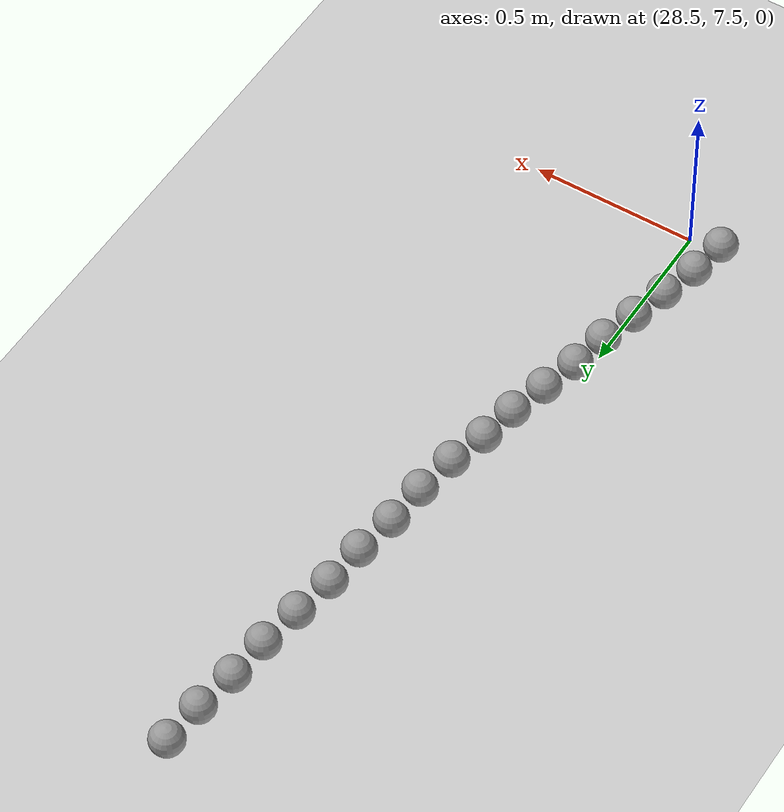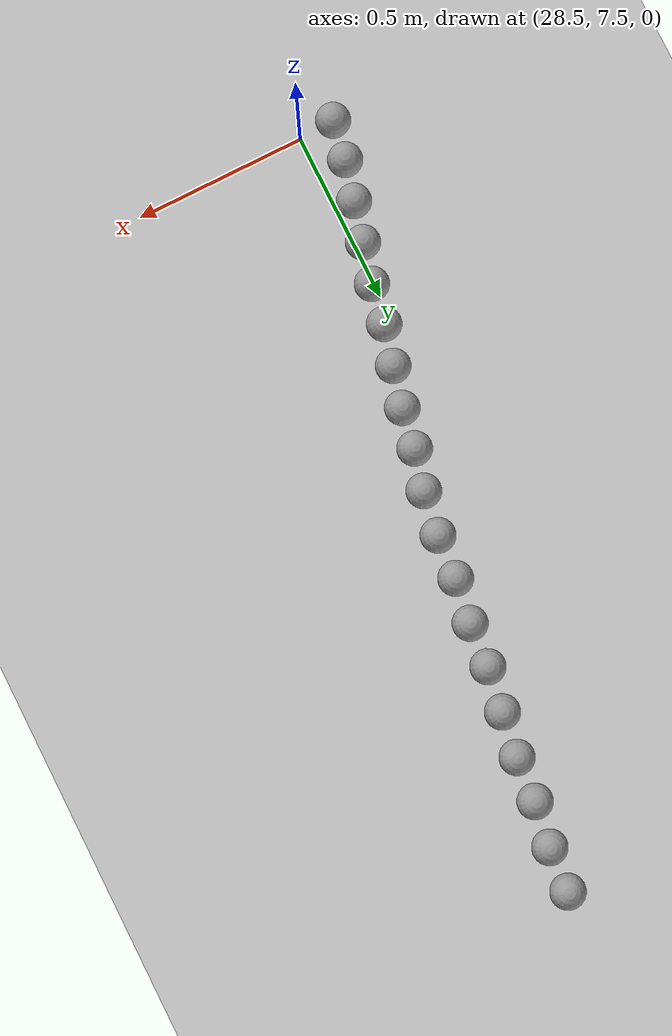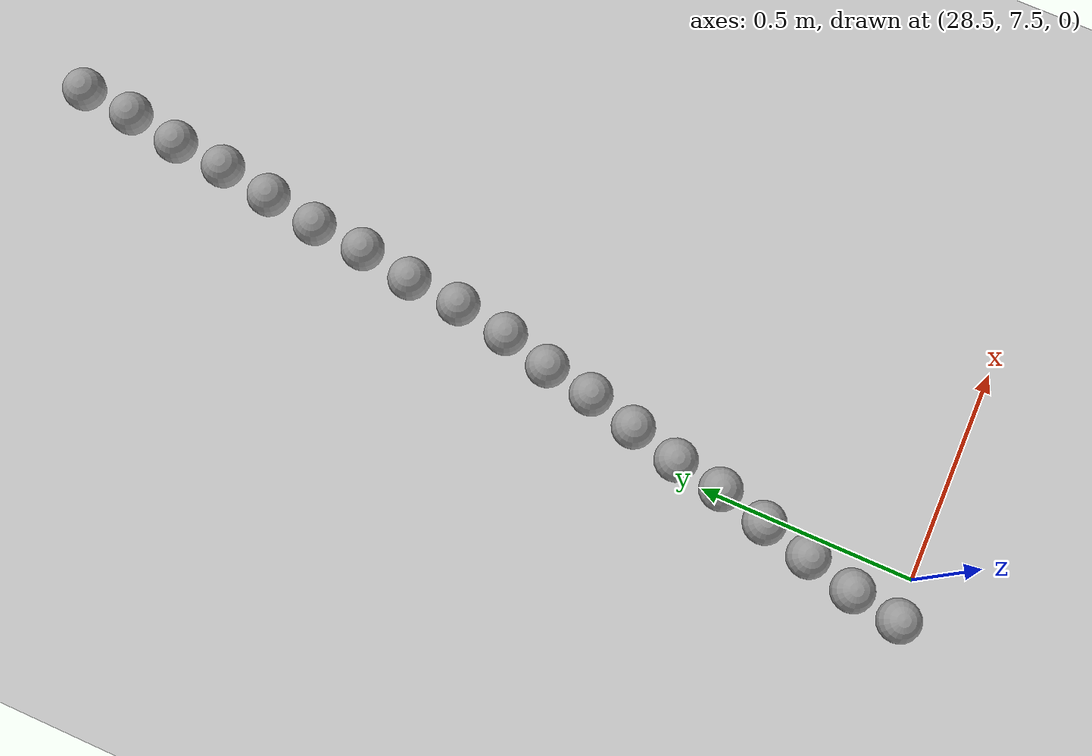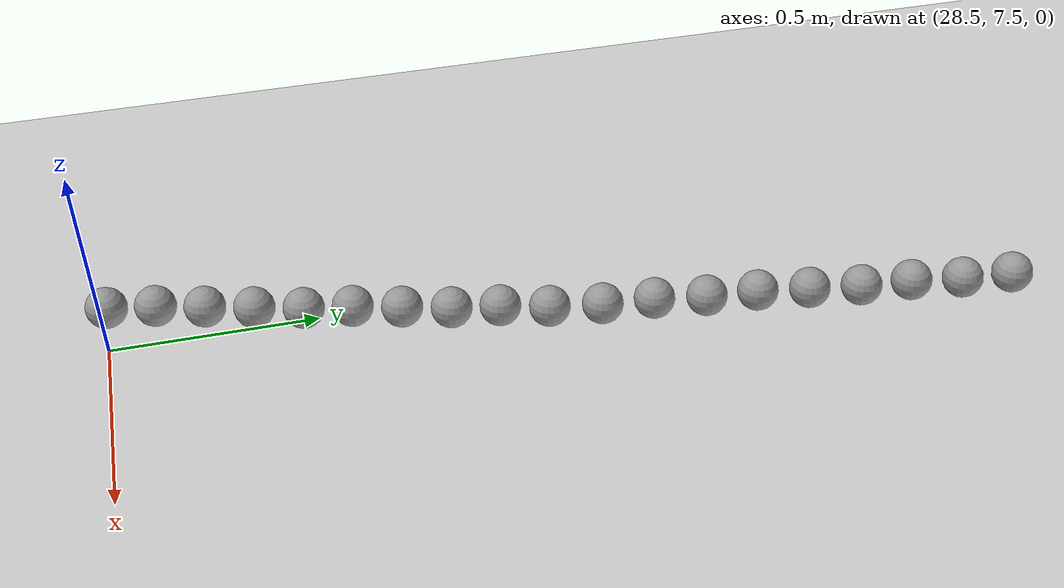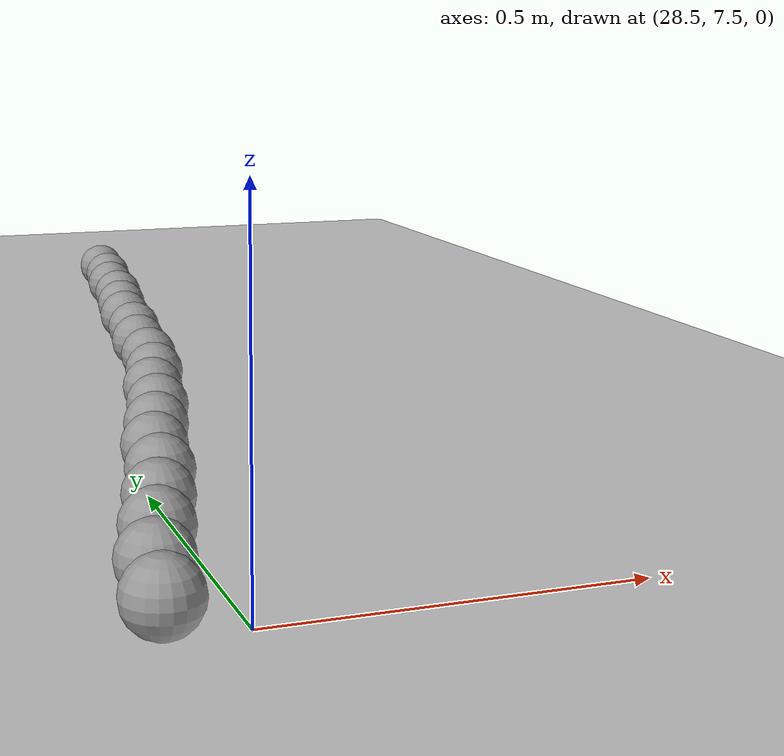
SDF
<sdf version="1.6">
 <world name="default">
  <model name="ground_plane">
   <static>1</static>
   <link name="link">
    <collision name="collision">
     <geometry><plane><normal>0 0 1</normal><size>100 100</size></plane></geometry>
     <surface><friction><ode><mu>100</mu><mu2>50</mu2></ode></friction></surface>
    </collision>
    <visual name="visual">
     <cast_shadows>0</cast_shadows>
     <geometry><plane><normal>0 0 1</normal><size>100 100</size></plane></geometry>
     <material>
      <script><uri>file://media/materials/scripts/gazebo.material</uri><name>Gazebo/Grey</name></script>
     </material>
    </visual>
   </link>
  </model>
  <model name="unit_sphere_0_261">
   <pose>28.780000 9.674000 0.050000 0 -0 0</pose>
   <link name="link">
    <inertial>
     <mass>1</mass>
     <inertia><ixx>0.1</ixx><ixy>0</ixy><ixz>0</ixz><iyy>0.1</iyy><iyz>0</iyz><izz>0.1</izz></inertia>
    </inertial>
    <collision name="collision"><geometry><sphere><radius>0.050000</radius></sphere></geometry></collision>
    <visual name="visual">
     <geometry><sphere><radius>0.050000</radius></sphere></geometry>
     <material>
      <script><name>Gazebo/Grey</name><uri>file://media/materials/scripts/gazebo.material</uri></script>
     </material>
    </visual>
   </link>
  </model>
  <model name="unit_sphere_0_262">
   <pose>28.770000 9.548000 0.050000 0 -0 0</pose>
   <link name="link">
    <inertial>
     <mass>1</mass>
     <inertia><ixx>0.1</ixx><ixy>0</ixy><ixz>0</ixz><iyy>0.1</iyy><iyz>0</iyz><izz>0.1</izz></inertia>
    </inertial>
    <collision name="collision"><geometry><sphere><radius>0.050000</radius></sphere></geometry></collision>
    <visual name="visual">
     <geometry><sphere><radius>0.050000</radius></sphere></geometry>
     <material>
      <script><name>Gazebo/Grey</name><uri>file://media/materials/scripts/gazebo.material</uri></script>
     </material>
    </visual>
   </link>
  </model>
  <model name="unit_sphere_0_263">
   <pose>28.750000 9.422000 0.050000 0 -0 0</pose>
   <link name="link">
    <inertial>
     <mass>1</mass>
     <inertia><ixx>0.1</ixx><ixy>0</ixy><ixz>0</ixz><iyy>0.1</iyy><iyz>0</iyz><izz>0.1</izz></inertia>
    </inertial>
    <collision name="collision"><geometry><sphere><radius>0.050000</radius></sphere></geometry></collision>
    <visual name="visual">
     <geometry><sphere><radius>0.050000</radius></sphere></geometry>
     <material>
      <script><name>Gazebo/Grey</name><uri>file://media/materials/scripts/gazebo.material</uri></script>
     </material>
    </visual>
   </link>
  </model>
  <model name="unit_sphere_0_264">
   <pose>28.740000 9.296000 0.050000 0 -0 0</pose>
   <link name="link">
    <inertial>
     <mass>1</mass>
     <inertia><ixx>0.1</ixx><ixy>0</ixy><ixz>0</ixz><iyy>0.1</iyy><iyz>0</iyz><izz>0.1</izz></inertia>
    </inertial>
    <collision name="collision"><geometry><sphere><radius>0.050000</radius></sphere></geometry></collision>
    <visual name="visual">
     <geometry><sphere><radius>0.050000</radius></sphere></geometry>
     <material>
      <script><name>Gazebo/Grey</name><uri>file://media/materials/scripts/gazebo.material</uri></script>
     </material>
    </visual>
   </link>
  </model>
  <model name="unit_sphere_0_265">
   <pose>28.720000 9.170000 0.050000 0 -0 0</pose>
   <link name="link">
    <inertial>
     <mass>1</mass>
     <inertia><ixx>0.1</ixx><ixy>0</ixy><ixz>0</ixz><iyy>0.1</iyy><iyz>0</iyz><izz>0.1</izz></inertia>
    </inertial>
    <collision name="collision"><geometry><sphere><radius>0.050000</radius></sphere></geometry></collision>
    <visual name="visual">
     <geometry><sphere><radius>0.050000</radius></sphere></geometry>
     <material>
      <script><name>Gazebo/Grey</name><uri>file://media/materials/scripts/gazebo.material</uri></script>
     </material>
    </visual>
   </link>
  </model>
  <model name="unit_sphere_0_266">
   <pose>28.700000 9.044000 0.050000 0 -0 0</pose>
   <link name="link">
    <inertial>
     <mass>1</mass>
     <inertia><ixx>0.1</ixx><ixy>0</ixy><ixz>0</ixz><iyy>0.1</iyy><iyz>0</iyz><izz>0.1</izz></inertia>
    </inertial>
    <collision name="collision"><geometry><sphere><radius>0.050000</radius></sphere></geometry></collision>
    <visual name="visual">
     <geometry><sphere><radius>0.050000</radius></sphere></geometry>
     <material>
      <script><name>Gazebo/Grey</name><uri>file://media/materials/scripts/gazebo.material</uri></script>
     </material>
    </visual>
   </link>
  </model>
  <model name="unit_sphere_0_267">
   <pose>28.690000 8.918000 0.050000 0 -0 0</pose>
   <link name="link">
    <inertial>
     <mass>1</mass>
     <inertia><ixx>0.1</ixx><ixy>0</ixy><ixz>0</ixz><iyy>0.1</iyy><iyz>0</iyz><izz>0.1</izz></inertia>
    </inertial>
    <collision name="collision"><geometry><sphere><radius>0.050000</radius></sphere></geometry></collision>
    <visual name="visual">
     <geometry><sphere><radius>0.050000</radius></sphere></geometry>
     <material>
      <script><name>Gazebo/Grey</name><uri>file://media/materials/scripts/gazebo.material</uri></script>
     </material>
    </visual>
   </link>
  </model>
  <model name="unit_sphere_0_268">
   <pose>28.670000 8.792000 0.050000 0 -0 0</pose>
   <link name="link">
    <inertial>
     <mass>1</mass>
     <inertia><ixx>0.1</ixx><ixy>0</ixy><ixz>0</ixz><iyy>0.1</iyy><iyz>0</iyz><izz>0.1</izz></inertia>
    </inertial>
    <collision name="collision"><geometry><sphere><radius>0.050000</radius></sphere></geometry></collision>
    <visual name="visual">
     <geometry><sphere><radius>0.050000</radius></sphere></geometry>
     <material>
      <script><name>Gazebo/Grey</name><uri>file://media/materials/scripts/gazebo.material</uri></script>
     </material>
    </visual>
   </link>
  </model>
  <model name="unit_sphere_0_269">
   <pose>28.660000 8.666000 0.050000 0 -0 0</pose>
   <link name="link">
    <inertial>
     <mass>1</mass>
     <inertia><ixx>0.1</ixx><ixy>0</ixy><ixz>0</ixz><iyy>0.1</iyy><iyz>0</iyz><izz>0.1</izz></inertia>
    </inertial>
    <collision name="collision"><geometry><sphere><radius>0.050000</radius></sphere></geometry></collision>
    <visual name="visual">
     <geometry><sphere><radius>0.050000</radius></sphere></geometry>
     <material>
      <script><name>Gazebo/Grey</name><uri>file://media/materials/scripts/gazebo.material</uri></script>
     </material>
    </visual>
   </link>
  </model>
  <model name="unit_sphere_0_270">
   <pose>28.640000 8.540000 0.050000 0 -0 0</pose>
   <link name="link">
    <inertial>
     <mass>1</mass>
     <inertia><ixx>0.1</ixx><ixy>0</ixy><ixz>0</ixz><iyy>0.1</iyy><iyz>0</iyz><izz>0.1</izz></inertia>
    </inertial>
    <collision name="collision"><geometry><sphere><radius>0.050000</radius></sphere></geometry></collision>
    <visual name="visual">
     <geometry><sphere><radius>0.050000</radius></sphere></geometry>
     <material>
      <script><name>Gazebo/Grey</name><uri>file://media/materials/scripts/gazebo.material</uri></script>
     </material>
    </visual>
   </link>
  </model>
  <model name="unit_sphere_0_271">
   <pose>28.610000 8.425000 0.050000 0 -0 0</pose>
   <link name="link">
    <inertial>
     <mass>1</mass>
     <inertia><ixx>0.1</ixx><ixy>0</ixy><ixz>0</ixz><iyy>0.1</iyy><iyz>0</iyz><izz>0.1</izz></inertia>
    </inertial>
    <collision name="collision"><geometry><sphere><radius>0.050000</radius></sphere></geometry></collision>
    <visual name="visual">
     <geometry><sphere><radius>0.050000</radius></sphere></geometry>
     <material>
      <script><name>Gazebo/Grey</name><uri>file://media/materials/scripts/gazebo.material</uri></script>
     </material>
    </visual>
   </link>
  </model>
  <model name="unit_sphere_0_272">
   <pose>28.590000 8.310000 0.050000 0 -0 0</pose>
   <link name="link">
    <inertial>
     <mass>1</mass>
     <inertia><ixx>0.1</ixx><ixy>0</ixy><ixz>0</ixz><iyy>0.1</iyy><iyz>0</iyz><izz>0.1</izz></inertia>
    </inertial>
    <collision name="collision"><geometry><sphere><radius>0.050000</radius></sphere></geometry></collision>
    <visual name="visual">
     <geometry><sphere><radius>0.050000</radius></sphere></geometry>
     <material>
      <script><name>Gazebo/Grey</name><uri>file://media/materials/scripts/gazebo.material</uri></script>
     </material>
    </visual>
   </link>
  </model>
  <model name="unit_sphere_0_273">
   <pose>28.560000 8.195000 0.050000 0 -0 0</pose>
   <link name="link">
    <inertial>
     <mass>1</mass>
     <inertia><ixx>0.1</ixx><ixy>0</ixy><ixz>0</ixz><iyy>0.1</iyy><iyz>0</iyz><izz>0.1</izz></inertia>
    </inertial>
    <collision name="collision"><geometry><sphere><radius>0.050000</radius></sphere></geometry></collision>
    <visual name="visual">
     <geometry><sphere><radius>0.050000</radius></sphere></geometry>
     <material>
      <script><name>Gazebo/Grey</name><uri>file://media/materials/scripts/gazebo.material</uri></script>
     </material>
    </visual>
   </link>
  </model>
  <model name="unit_sphere_0_274">
   <pose>28.530000 8.080000 0.050000 0 -0 0</pose>
   <link name="link">
    <inertial>
     <mass>1</mass>
     <inertia><ixx>0.1</ixx><ixy>0</ixy><ixz>0</ixz><iyy>0.1</iyy><iyz>0</iyz><izz>0.1</izz></inertia>
    </inertial>
    <collision name="collision"><geometry><sphere><radius>0.050000</radius></sphere></geometry></collision>
    <visual name="visual">
     <geometry><sphere><radius>0.050000</radius></sphere></geometry>
     <material>
      <script><name>Gazebo/Grey</name><uri>file://media/materials/scripts/gazebo.material</uri></script>
     </material>
    </visual>
   </link>
  </model>
  <model name="unit_sphere_0_275">
   <pose>28.510000 7.965000 0.050000 0 -0 0</pose>
   <link name="link">
    <inertial>
     <mass>1</mass>
     <inertia><ixx>0.1</ixx><ixy>0</ixy><ixz>0</ixz><iyy>0.1</iyy><iyz>0</iyz><izz>0.1</izz></inertia>
    </inertial>
    <collision name="collision"><geometry><sphere><radius>0.050000</radius></sphere></geometry></collision>
    <visual name="visual">
     <geometry><sphere><radius>0.050000</radius></sphere></geometry>
     <material>
      <script><name>Gazebo/Grey</name><uri>file://media/materials/scripts/gazebo.material</uri></script>
     </material>
    </visual>
   </link>
  </model>
  <model name="unit_sphere_0_276">
   <pose>28.480000 7.850000 0.050000 0 -0 0</pose>
   <link name="link">
    <inertial>
     <mass>1</mass>
     <inertia><ixx>0.1</ixx><ixy>0</ixy><ixz>0</ixz><iyy>0.1</iyy><iyz>0</iyz><izz>0.1</izz></inertia>
    </inertial>
    <collision name="collision"><geometry><sphere><radius>0.050000</radius></sphere></geometry></collision>
    <visual name="visual">
     <geometry><sphere><radius>0.050000</radius></sphere></geometry>
     <material>
      <script><name>Gazebo/Grey</name><uri>file://media/materials/scripts/gazebo.material</uri></script>
     </material>
    </visual>
   </link>
  </model>
  <model name="unit_sphere_0_277">
   <pose>28.450000 7.735000 0.050000 0 -0 0</pose>
   <link name="link">
    <inertial>
     <mass>1</mass>
     <inertia><ixx>0.1</ixx><ixy>0</ixy><ixz>0</ixz><iyy>0.1</iyy><iyz>0</iyz><izz>0.1</izz></inertia>
    </inertial>
    <collision name="collision"><geometry><sphere><radius>0.050000</radius></sphere></geometry></collision>
    <visual name="visual">
     <geometry><sphere><radius>0.050000</radius></sphere></geometry>
     <material>
      <script><name>Gazebo/Grey</name><uri>file://media/materials/scripts/gazebo.material</uri></script>
     </material>
    </visual>
   </link>
  </model>
  <model name="unit_sphere_0_278">
   <pose>28.420000 7.620000 0.050000 0 -0 0</pose>
   <link name="link">
    <inertial>
     <mass>1</mass>
     <inertia><ixx>0.1</ixx><ixy>0</ixy><ixz>0</ixz><iyy>0.1</iyy><iyz>0</iyz><izz>0.1</izz></inertia>
    </inertial>
    <collision name="collision"><geometry><sphere><radius>0.050000</radius></sphere></geometry></collision>
    <visual name="visual">
     <geometry><sphere><radius>0.050000</radius></sphere></geometry>
     <material>
      <script><name>Gazebo/Grey</name><uri>file://media/materials/scripts/gazebo.material</uri></script>
     </material>
    </visual>
   </link>
  </model>
  <model name="unit_sphere_0_279">
   <pose>28.400000 7.505000 0.050000 0 -0 0</pose>
   <link name="link">
    <inertial>
     <mass>1</mass>
     <inertia><ixx>0.1</ixx><ixy>0</ixy><ixz>0</ixz><iyy>0.1</iyy><iyz>0</iyz><izz>0.1</izz></inertia>
    </inertial>
    <collision name="collision"><geometry><sphere><radius>0.050000</radius></sphere></geometry></collision>
    <visual name="visual">
     <geometry><sphere><radius>0.050000</radius></sphere></geometry>
     <material>
      <script><name>Gazebo/Grey</name><uri>file://media/materials/scripts/gazebo.material</uri></script>
     </material>
    </visual>
   </link>
  </model>
 </world>
</sdf>
